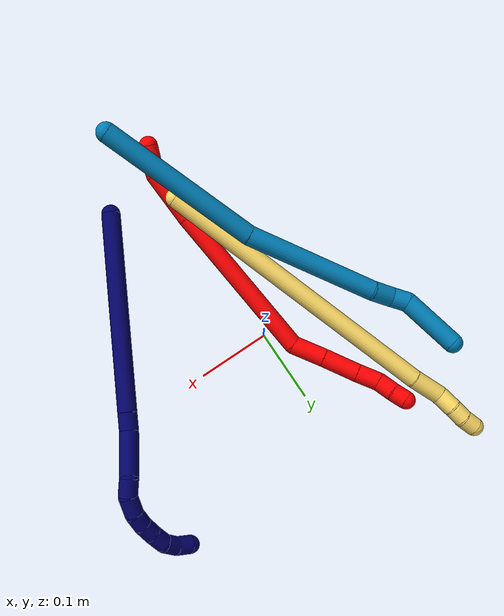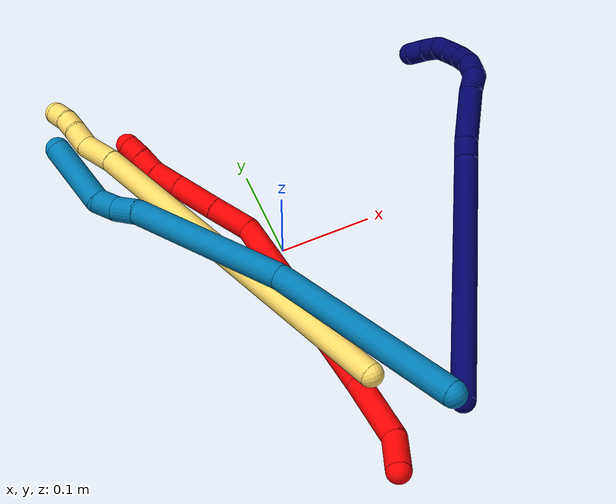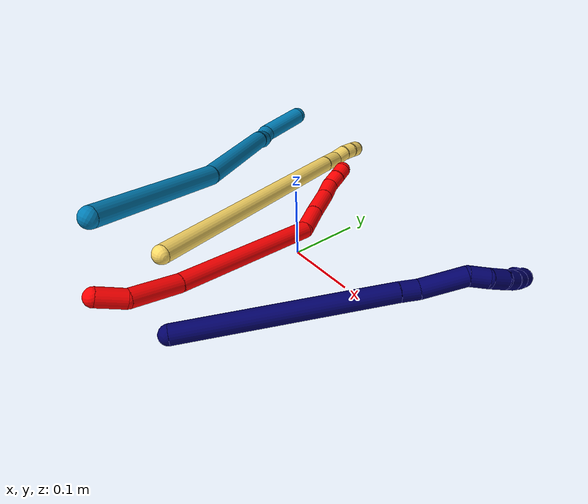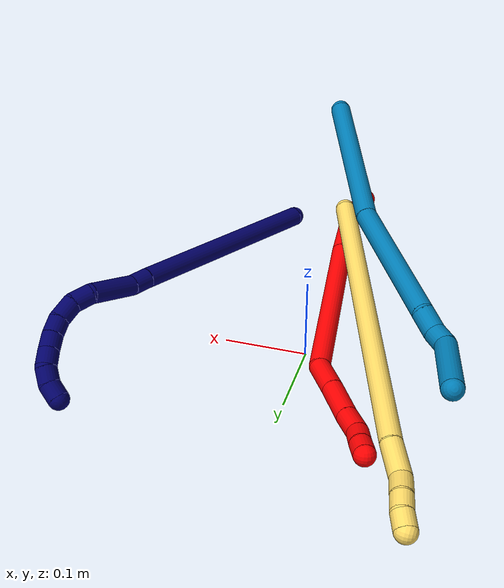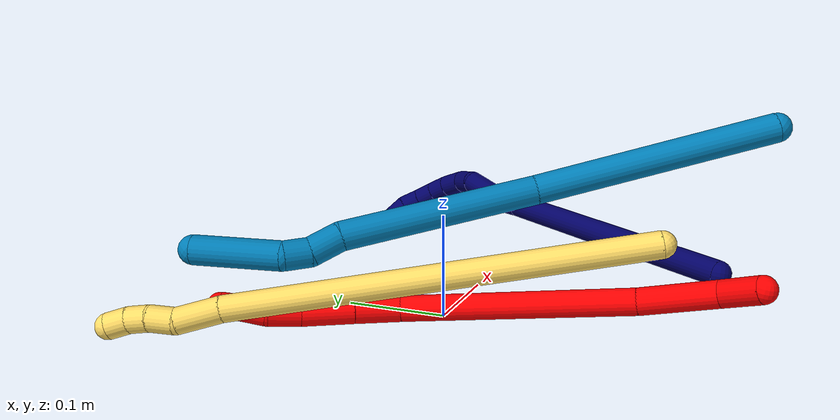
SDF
<sdf version="1.7">
 <world name="default">
  <model name="2">
   <static>0</static>
   <link name="2">
    <collision name="collision-cylinder-e_1_1_4">
     <pose>-0.012737 0.011349 0.009053 -0.897487 -0.720167 0.358677</pose>
     <geometry><cylinder><radius>0.0125</radius><length>0.038627</length></cylinder></geometry>
     <surface>
      <friction><ode><mu>1.16</mu><mu2>1.16</mu2><slip1>0</slip1><slip2>0</slip2></ode></friction>
      <contact><ode><kp>1e+06</kp><kd>1</kd><max_vel>0</max_vel><min_depth>0.001</min_depth></ode></contact>
     </surface>
    </collision>
    <visual name="visual-cylinder-e_1_1_4">
     <pose>-0.012737 0.011349 0.009053 -0.897487 -0.720167 0.358677</pose>
     <geometry><cylinder><radius>0.0125</radius><length>0.038627</length></cylinder></geometry>
     <material><ambient>1 0 0 1</ambient></material>
    </visual>
    <collision name="collision-cylinder-e_2_4_5">
     <pose>-0.037715 0.05317 0.031824 -1.14779 -0.351125 0.228357</pose>
     <geometry><cylinder><radius>0.0125</radius><length>0.071175</length></cylinder></geometry>
     <surface>
      <friction><ode><mu>1.16</mu><mu2>1.16</mu2><slip1>0</slip1><slip2>0</slip2></ode></friction>
      <contact><ode><kp>1e+06</kp><kd>1</kd><max_vel>0</max_vel><min_depth>0.001</min_depth></ode></contact>
     </surface>
    </collision>
    <visual name="visual-cylinder-e_2_4_5">
     <pose>-0.037715 0.05317 0.031824 -1.14779 -0.351125 0.228357</pose>
     <geometry><cylinder><radius>0.0125</radius><length>0.071175</length></cylinder></geometry>
     <material><ambient>1 0 0 1</ambient></material>
    </visual>
    <collision name="collision-cylinder-e_3_5_6">
     <pose>-0.083503 0.183421 0.079303 -1.24453 -0.308321 0.222022</pose>
     <geometry><cylinder><radius>0.0125</radius><length>0.221101</length></cylinder></geometry>
     <surface>
      <friction><ode><mu>1.16</mu><mu2>1.16</mu2><slip1>0</slip1><slip2>0</slip2></ode></friction>
      <contact><ode><kp>1e+06</kp><kd>1</kd><max_vel>0</max_vel><min_depth>0.001</min_depth></ode></contact>
     </surface>
    </collision>
    <visual name="visual-cylinder-e_3_5_6">
     <pose>-0.083503 0.183421 0.079303 -1.24453 -0.308321 0.222022</pose>
     <geometry><cylinder><radius>0.0125</radius><length>0.221101</length></cylinder></geometry>
     <material><ambient>1 0 0 1</ambient></material>
    </visual>
    <collision name="collision-cylinder-e_4_6_7">
     <pose>-0.113929 0.305263 0.116078 -1.43505 0.139301 -0.121615</pose>
     <geometry><cylinder><radius>0.0125</radius><length>0.044967</length></cylinder></geometry>
     <surface>
      <friction><ode><mu>1.16</mu><mu2>1.16</mu2><slip1>0</slip1><slip2>0</slip2></ode></friction>
      <contact><ode><kp>1e+06</kp><kd>1</kd><max_vel>0</max_vel><min_depth>0.001</min_depth></ode></contact>
     </surface>
    </collision>
    <visual name="visual-cylinder-e_4_6_7">
     <pose>-0.113929 0.305263 0.116078 -1.43505 0.139301 -0.121615</pose>
     <geometry><cylinder><radius>0.0125</radius><length>0.044967</length></cylinder></geometry>
     <material><ambient>1 0 0 1</ambient></material>
    </visual>
    <collision name="collision-cylinder-e_5_7_8">
     <pose>-0.107932 0.351562 0.1229 -1.41492 0.116663 -0.099792</pose>
     <geometry><cylinder><radius>0.0125</radius><length>0.049408</length></cylinder></geometry>
     <surface>
      <friction><ode><mu>1.16</mu><mu2>1.16</mu2><slip1>0</slip1><slip2>0</slip2></ode></friction>
      <contact><ode><kp>1e+06</kp><kd>1</kd><max_vel>0</max_vel><min_depth>0.001</min_depth></ode></contact>
     </surface>
    </collision>
    <visual name="visual-cylinder-e_5_7_8">
     <pose>-0.107932 0.351562 0.1229 -1.41492 0.116663 -0.099792</pose>
     <geometry><cylinder><radius>0.0125</radius><length>0.049408</length></cylinder></geometry>
     <material><ambient>1 0 0 1</ambient></material>
    </visual>
    <collision name="collision-cylinder-e_6_8_9">
     <pose>-0.102842 0.391097 0.127942 -1.49038 0.143307 -0.132256</pose>
     <geometry><cylinder><radius>0.0125</radius><length>0.03101</length></cylinder></geometry>
     <surface>
      <friction><ode><mu>1.16</mu><mu2>1.16</mu2><slip1>0</slip1><slip2>0</slip2></ode></friction>
      <contact><ode><kp>1e+06</kp><kd>1</kd><max_vel>0</max_vel><min_depth>0.001</min_depth></ode></contact>
     </surface>
    </collision>
    <visual name="visual-cylinder-e_6_8_9">
     <pose>-0.102842 0.391097 0.127942 -1.49038 0.143307 -0.132256</pose>
     <geometry><cylinder><radius>0.0125</radius><length>0.03101</length></cylinder></geometry>
     <material><ambient>1 0 0 1</ambient></material>
    </visual>
    <collision name="collision-cylinder-e_7_9_10">
     <pose>-0.101893 0.418 0.128937 -1.59125 -0.108552 0.110791</pose>
     <geometry><cylinder><radius>0.0125</radius><length>0.023355</length></cylinder></geometry>
     <surface>
      <friction><ode><mu>1.16</mu><mu2>1.16</mu2><slip1>0</slip1><slip2>0</slip2></ode></friction>
      <contact><ode><kp>1e+06</kp><kd>1</kd><max_vel>0</max_vel><min_depth>0.001</min_depth></ode></contact>
     </surface>
    </collision>
    <visual name="visual-cylinder-e_7_9_10">
     <pose>-0.101893 0.418 0.128937 -1.59125 -0.108552 0.110791</pose>
     <geometry><cylinder><radius>0.0125</radius><length>0.023355</length></cylinder></geometry>
     <material><ambient>1 0 0 1</ambient></material>
    </visual>
    <collision name="collision-cylinder-e_8_10_2">
     <pose>-0.103542 0.43977 0.12908 -1.53338 -0.037702 0.036317</pose>
     <geometry><cylinder><radius>0.0125</radius><length>0.020357</length></cylinder></geometry>
     <surface>
      <friction><ode><mu>1.16</mu><mu2>1.16</mu2><slip1>0</slip1><slip2>0</slip2></ode></friction>
      <contact><ode><kp>1e+06</kp><kd>1</kd><max_vel>0</max_vel><min_depth>0.001</min_depth></ode></contact>
     </surface>
    </collision>
    <visual name="visual-cylinder-e_8_10_2">
     <pose>-0.103542 0.43977 0.12908 -1.53338 -0.037702 0.036317</pose>
     <geometry><cylinder><radius>0.0125</radius><length>0.020357</length></cylinder></geometry>
     <material><ambient>1 0 0 1</ambient></material>
    </visual>
    <collision name="collision-sphere-2">
     <pose>-0.103925 0.449934 0.129461 0 -0 0</pose>
     <geometry><sphere><radius>0.0125</radius></sphere></geometry>
     <surface>
      <friction><ode><mu>1.16</mu><mu2>1.16</mu2><slip1>0</slip1><slip2>0</slip2></ode></friction>
      <contact><ode><kp>1e+06</kp><kd>1</kd><max_vel>0</max_vel><min_depth>0.001</min_depth></ode></contact>
     </surface>
    </collision>
    <visual name="visual-sphere-2">
     <pose>-0.103925 0.449934 0.129461 0 -0 0</pose>
     <geometry><sphere><radius>0.0125</radius></sphere></geometry>
     <material><ambient>1 0 0 1</ambient></material>
    </visual>
    <collision name="collision-sphere-10">
     <pose>-0.103158 0.429606 0.1287 0 -0 0</pose>
     <geometry><sphere><radius>0.0125</radius></sphere></geometry>
     <surface>
      <friction><ode><mu>1.16</mu><mu2>1.16</mu2><slip1>0</slip1><slip2>0</slip2></ode></friction>
      <contact><ode><kp>1e+06</kp><kd>1</kd><max_vel>0</max_vel><min_depth>0.001</min_depth></ode></contact>
     </surface>
    </collision>
    <visual name="visual-sphere-10">
     <pose>-0.103158 0.429606 0.1287 0 -0 0</pose>
     <geometry><sphere><radius>0.0125</radius></sphere></geometry>
     <material><ambient>1 0 0 1</ambient></material>
    </visual>
    <collision name="collision-sphere-9">
     <pose>-0.100628 0.406393 0.129174 0 -0 0</pose>
     <geometry><sphere><radius>0.0125</radius></sphere></geometry>
     <surface>
      <friction><ode><mu>1.16</mu><mu2>1.16</mu2><slip1>0</slip1><slip2>0</slip2></ode></friction>
      <contact><ode><kp>1e+06</kp><kd>1</kd><max_vel>0</max_vel><min_depth>0.001</min_depth></ode></contact>
     </surface>
    </collision>
    <visual name="visual-sphere-9">
     <pose>-0.100628 0.406393 0.129174 0 -0 0</pose>
     <geometry><sphere><radius>0.0125</radius></sphere></geometry>
     <material><ambient>1 0 0 1</ambient></material>
    </visual>
    <collision name="collision-sphere-4">
     <pose>-0.025475 0.022699 0.018106 0 -0 0</pose>
     <geometry><sphere><radius>0.0125</radius></sphere></geometry>
     <surface>
      <friction><ode><mu>1.16</mu><mu2>1.16</mu2><slip1>0</slip1><slip2>0</slip2></ode></friction>
      <contact><ode><kp>1e+06</kp><kd>1</kd><max_vel>0</max_vel><min_depth>0.001</min_depth></ode></contact>
     </surface>
    </collision>
    <visual name="visual-sphere-4">
     <pose>-0.025475 0.022699 0.018106 0 -0 0</pose>
     <geometry><sphere><radius>0.0125</radius></sphere></geometry>
     <material><ambient>1 0 0 1</ambient></material>
    </visual>
    <collision name="collision-sphere-1">
     <geometry><sphere><radius>0.0125</radius></sphere></geometry>
     <surface>
      <friction><ode><mu>1.16</mu><mu2>1.16</mu2><slip1>0</slip1><slip2>0</slip2></ode></friction>
      <contact><ode><kp>1e+06</kp><kd>1</kd><max_vel>0</max_vel><min_depth>0.001</min_depth></ode></contact>
     </surface>
    </collision>
    <visual name="visual-sphere-1">
     <geometry><sphere><radius>0.0125</radius></sphere></geometry>
     <material><ambient>1 0 0 1</ambient></material>
    </visual>
    <collision name="collision-sphere-8">
     <pose>-0.105056 0.375801 0.126709 0 -0 0</pose>
     <geometry><sphere><radius>0.0125</radius></sphere></geometry>
     <surface>
      <friction><ode><mu>1.16</mu><mu2>1.16</mu2><slip1>0</slip1><slip2>0</slip2></ode></friction>
      <contact><ode><kp>1e+06</kp><kd>1</kd><max_vel>0</max_vel><min_depth>0.001</min_depth></ode></contact>
     </surface>
    </collision>
    <visual name="visual-sphere-8">
     <pose>-0.105056 0.375801 0.126709 0 -0 0</pose>
     <geometry><sphere><radius>0.0125</radius></sphere></geometry>
     <material><ambient>1 0 0 1</ambient></material>
    </visual>
    <collision name="collision-sphere-5">
     <pose>-0.049956 0.083641 0.045541 0 -0 0</pose>
     <geometry><sphere><radius>0.0125</radius></sphere></geometry>
     <surface>
      <friction><ode><mu>1.16</mu><mu2>1.16</mu2><slip1>0</slip1><slip2>0</slip2></ode></friction>
      <contact><ode><kp>1e+06</kp><kd>1</kd><max_vel>0</max_vel><min_depth>0.001</min_depth></ode></contact>
     </surface>
    </collision>
    <visual name="visual-sphere-5">
     <pose>-0.049956 0.083641 0.045541 0 -0 0</pose>
     <geometry><sphere><radius>0.0125</radius></sphere></geometry>
     <material><ambient>1 0 0 1</ambient></material>
    </visual>
    <collision name="collision-sphere-6">
     <pose>-0.117051 0.283202 0.113064 0 -0 0</pose>
     <geometry><sphere><radius>0.0125</radius></sphere></geometry>
     <surface>
      <friction><ode><mu>1.16</mu><mu2>1.16</mu2><slip1>0</slip1><slip2>0</slip2></ode></friction>
      <contact><ode><kp>1e+06</kp><kd>1</kd><max_vel>0</max_vel><min_depth>0.001</min_depth></ode></contact>
     </surface>
    </collision>
    <visual name="visual-sphere-6">
     <pose>-0.117051 0.283202 0.113064 0 -0 0</pose>
     <geometry><sphere><radius>0.0125</radius></sphere></geometry>
     <material><ambient>1 0 0 1</ambient></material>
    </visual>
    <collision name="collision-sphere-7">
     <pose>-0.110807 0.327324 0.119091 0 -0 0</pose>
     <geometry><sphere><radius>0.0125</radius></sphere></geometry>
     <surface>
      <friction><ode><mu>1.16</mu><mu2>1.16</mu2><slip1>0</slip1><slip2>0</slip2></ode></friction>
      <contact><ode><kp>1e+06</kp><kd>1</kd><max_vel>0</max_vel><min_depth>0.001</min_depth></ode></contact>
     </surface>
    </collision>
    <visual name="visual-sphere-7">
     <pose>-0.110807 0.327324 0.119091 0 -0 0</pose>
     <geometry><sphere><radius>0.0125</radius></sphere></geometry>
     <material><ambient>1 0 0 1</ambient></material>
    </visual>
    <inertial>
     <pose>-0.079543 0.213434 0.082094 0 -0 0</pose>
     <mass>0.5</mass>
     <inertia>
      <ixx>0.001097</ixx>
      <ixy>0</ixy>
      <ixz>0</ixz>
      <iyy>0.000598</iyy>
      <iyz>0</iyz>
      <izz>-0.000582</izz>
     </inertia>
    </inertial>
   </link>
   <pose>-0.010267 -0.288507 0.066457 2.96966 0.067006 -2.70989</pose>
  </model>
  <model name="5">
   <static>0</static>
   <link name="5">
    <collision name="collision-cylinder-e_1_1_4">
     <pose>-0.085904 0.158323 0.07733 -1.11645 -0.453631 0.286271</pose>
     <geometry><cylinder><radius>0.0125</radius><length>0.392049</length></cylinder></geometry>
     <surface>
      <friction><ode><mu>1.16</mu><mu2>1.16</mu2><slip1>0</slip1><slip2>0</slip2></ode></friction>
      <contact><ode><kp>1e+06</kp><kd>1</kd><max_vel>0</max_vel><min_depth>0.001</min_depth></ode></contact>
     </surface>
    </collision>
    <visual name="visual-cylinder-e_1_1_4">
     <pose>-0.085904 0.158323 0.07733 -1.11645 -0.453631 0.286271</pose>
     <geometry><cylinder><radius>0.0125</radius><length>0.392049</length></cylinder></geometry>
     <material><ambient>1 0.858824 0.4 1</ambient></material>
    </visual>
    <collision name="collision-cylinder-e_2_4_5">
     <pose>-0.18237 0.332119 0.164718 -0.994383 -0.519766 0.286605</pose>
     <geometry><cylinder><radius>0.0125</radius><length>0.042527</length></cylinder></geometry>
     <surface>
      <friction><ode><mu>1.16</mu><mu2>1.16</mu2><slip1>0</slip1><slip2>0</slip2></ode></friction>
      <contact><ode><kp>1e+06</kp><kd>1</kd><max_vel>0</max_vel><min_depth>0.001</min_depth></ode></contact>
     </surface>
    </collision>
    <visual name="visual-cylinder-e_2_4_5">
     <pose>-0.18237 0.332119 0.164718 -0.994383 -0.519766 0.286605</pose>
     <geometry><cylinder><radius>0.0125</radius><length>0.042527</length></cylinder></geometry>
     <material><ambient>1 0.858824 0.4 1</ambient></material>
    </visual>
    <collision name="collision-cylinder-e_3_5_6">
     <pose>-0.196476 0.359277 0.177845 -1.31398 -0.285475 0.220792</pose>
     <geometry><cylinder><radius>0.0125</radius><length>0.02518</length></cylinder></geometry>
     <surface>
      <friction><ode><mu>1.16</mu><mu2>1.16</mu2><slip1>0</slip1><slip2>0</slip2></ode></friction>
      <contact><ode><kp>1e+06</kp><kd>1</kd><max_vel>0</max_vel><min_depth>0.001</min_depth></ode></contact>
     </surface>
    </collision>
    <visual name="visual-cylinder-e_3_5_6">
     <pose>-0.196476 0.359277 0.177845 -1.31398 -0.285475 0.220792</pose>
     <geometry><cylinder><radius>0.0125</radius><length>0.02518</length></cylinder></geometry>
     <material><ambient>1 0.858824 0.4 1</ambient></material>
    </visual>
    <collision name="collision-cylinder-e_4_6_7">
     <pose>-0.204546 0.379592 0.183511 -1.2785 -0.465217 0.348633</pose>
     <geometry><cylinder><radius>0.0125</radius><length>0.020169</length></cylinder></geometry>
     <surface>
      <friction><ode><mu>1.16</mu><mu2>1.16</mu2><slip1>0</slip1><slip2>0</slip2></ode></friction>
      <contact><ode><kp>1e+06</kp><kd>1</kd><max_vel>0</max_vel><min_depth>0.001</min_depth></ode></contact>
     </surface>
    </collision>
    <visual name="visual-cylinder-e_4_6_7">
     <pose>-0.204546 0.379592 0.183511 -1.2785 -0.465217 0.348633</pose>
     <geometry><cylinder><radius>0.0125</radius><length>0.020169</length></cylinder></geometry>
     <material><ambient>1 0.858824 0.4 1</ambient></material>
    </visual>
    <collision name="collision-cylinder-e_5_7_2">
     <pose>-0.214544 0.395515 0.190304 -1.04869 -0.576773 0.339833</pose>
     <geometry><cylinder><radius>0.0125</radius><length>0.020075</length></cylinder></geometry>
     <surface>
      <friction><ode><mu>1.16</mu><mu2>1.16</mu2><slip1>0</slip1><slip2>0</slip2></ode></friction>
      <contact><ode><kp>1e+06</kp><kd>1</kd><max_vel>0</max_vel><min_depth>0.001</min_depth></ode></contact>
     </surface>
    </collision>
    <visual name="visual-cylinder-e_5_7_2">
     <pose>-0.214544 0.395515 0.190304 -1.04869 -0.576773 0.339833</pose>
     <geometry><cylinder><radius>0.0125</radius><length>0.020075</length></cylinder></geometry>
     <material><ambient>1 0.858824 0.4 1</ambient></material>
    </visual>
    <collision name="collision-sphere-2">
     <pose>-0.220017 0.402808 0.1945 0 -0 0</pose>
     <geometry><sphere><radius>0.0125</radius></sphere></geometry>
     <surface>
      <friction><ode><mu>1.16</mu><mu2>1.16</mu2><slip1>0</slip1><slip2>0</slip2></ode></friction>
      <contact><ode><kp>1e+06</kp><kd>1</kd><max_vel>0</max_vel><min_depth>0.001</min_depth></ode></contact>
     </surface>
    </collision>
    <visual name="visual-sphere-2">
     <pose>-0.220017 0.402808 0.1945 0 -0 0</pose>
     <geometry><sphere><radius>0.0125</radius></sphere></geometry>
     <material><ambient>1 0.858824 0.4 1</ambient></material>
    </visual>
    <collision name="collision-sphere-7">
     <pose>-0.20907 0.388222 0.186108 0 -0 0</pose>
     <geometry><sphere><radius>0.0125</radius></sphere></geometry>
     <surface>
      <friction><ode><mu>1.16</mu><mu2>1.16</mu2><slip1>0</slip1><slip2>0</slip2></ode></friction>
      <contact><ode><kp>1e+06</kp><kd>1</kd><max_vel>0</max_vel><min_depth>0.001</min_depth></ode></contact>
     </surface>
    </collision>
    <visual name="visual-sphere-7">
     <pose>-0.20907 0.388222 0.186108 0 -0 0</pose>
     <geometry><sphere><radius>0.0125</radius></sphere></geometry>
     <material><ambient>1 0.858824 0.4 1</ambient></material>
    </visual>
    <collision name="collision-sphere-6">
     <pose>-0.200022 0.370961 0.180914 0 -0 0</pose>
     <geometry><sphere><radius>0.0125</radius></sphere></geometry>
     <surface>
      <friction><ode><mu>1.16</mu><mu2>1.16</mu2><slip1>0</slip1><slip2>0</slip2></ode></friction>
      <contact><ode><kp>1e+06</kp><kd>1</kd><max_vel>0</max_vel><min_depth>0.001</min_depth></ode></contact>
     </surface>
    </collision>
    <visual name="visual-sphere-6">
     <pose>-0.200022 0.370961 0.180914 0 -0 0</pose>
     <geometry><sphere><radius>0.0125</radius></sphere></geometry>
     <material><ambient>1 0.858824 0.4 1</ambient></material>
    </visual>
    <collision name="collision-sphere-5">
     <pose>-0.192931 0.347592 0.174777 0 -0 0</pose>
     <geometry><sphere><radius>0.0125</radius></sphere></geometry>
     <surface>
      <friction><ode><mu>1.16</mu><mu2>1.16</mu2><slip1>0</slip1><slip2>0</slip2></ode></friction>
      <contact><ode><kp>1e+06</kp><kd>1</kd><max_vel>0</max_vel><min_depth>0.001</min_depth></ode></contact>
     </surface>
    </collision>
    <visual name="visual-sphere-5">
     <pose>-0.192931 0.347592 0.174777 0 -0 0</pose>
     <geometry><sphere><radius>0.0125</radius></sphere></geometry>
     <material><ambient>1 0.858824 0.4 1</ambient></material>
    </visual>
    <collision name="collision-sphere-1">
     <geometry><sphere><radius>0.0125</radius></sphere></geometry>
     <surface>
      <friction><ode><mu>1.16</mu><mu2>1.16</mu2><slip1>0</slip1><slip2>0</slip2></ode></friction>
      <contact><ode><kp>1e+06</kp><kd>1</kd><max_vel>0</max_vel><min_depth>0.001</min_depth></ode></contact>
     </surface>
    </collision>
    <visual name="visual-sphere-1">
     <geometry><sphere><radius>0.0125</radius></sphere></geometry>
     <material><ambient>1 0.858824 0.4 1</ambient></material>
    </visual>
    <collision name="collision-sphere-4">
     <pose>-0.171809 0.316646 0.15466 0 -0 0</pose>
     <geometry><sphere><radius>0.0125</radius></sphere></geometry>
     <surface>
      <friction><ode><mu>1.16</mu><mu2>1.16</mu2><slip1>0</slip1><slip2>0</slip2></ode></friction>
      <contact><ode><kp>1e+06</kp><kd>1</kd><max_vel>0</max_vel><min_depth>0.001</min_depth></ode></contact>
     </surface>
    </collision>
    <visual name="visual-sphere-4">
     <pose>-0.171809 0.316646 0.15466 0 -0 0</pose>
     <geometry><sphere><radius>0.0125</radius></sphere></geometry>
     <material><ambient>1 0.858824 0.4 1</ambient></material>
    </visual>
    <inertial>
     <pose>-0.109628 0.201674 0.098644 0 -0 0</pose>
     <mass>0.5</mass>
     <inertia>
      <ixx>0.005619</ixx>
      <ixy>0</ixy>
      <ixz>0</ixz>
      <iyy>0.004001</iyy>
      <iyz>0</iyz>
      <izz>-0.00185</izz>
     </inertia>
    </inertial>
   </link>
   <pose>0.000821 -0.202846 0.093177 1.82625 -1.20009 -1.85761</pose>
  </model>
  <model name="7">
   <static>0</static>
   <link name="7">
    <collision name="collision-cylinder-e_1_1_4">
     <pose>-0.004125 0.087985 0.098877 -0.727176 -0.031154 0.011855</pose>
     <geometry><cylinder><radius>0.0125</radius><length>0.26484</length></cylinder></geometry>
     <surface>
      <friction><ode><mu>1.16</mu><mu2>1.16</mu2><slip1>0</slip1><slip2>0</slip2></ode></friction>
      <contact><ode><kp>1e+06</kp><kd>1</kd><max_vel>0</max_vel><min_depth>0.001</min_depth></ode></contact>
     </surface>
    </collision>
    <visual name="visual-cylinder-e_1_1_4">
     <pose>-0.004125 0.087985 0.098877 -0.727176 -0.031154 0.011855</pose>
     <geometry><cylinder><radius>0.0125</radius><length>0.26484</length></cylinder></geometry>
     <material><ambient>0.003922 0 0.403922 1</ambient></material>
    </visual>
    <collision name="collision-cylinder-e_2_4_5">
     <pose>-0.009242 0.183908 0.206579 -0.73252 -0.083461 0.032029</pose>
     <geometry><cylinder><radius>0.0125</radius><length>0.023824</length></cylinder></geometry>
     <surface>
      <friction><ode><mu>1.16</mu><mu2>1.16</mu2><slip1>0</slip1><slip2>0</slip2></ode></friction>
      <contact><ode><kp>1e+06</kp><kd>1</kd><max_vel>0</max_vel><min_depth>0.001</min_depth></ode></contact>
     </surface>
    </collision>
    <visual name="visual-cylinder-e_2_4_5">
     <pose>-0.009242 0.183908 0.206579 -0.73252 -0.083461 0.032029</pose>
     <geometry><cylinder><radius>0.0125</radius><length>0.023824</length></cylinder></geometry>
     <material><ambient>0.003922 0 0.403922 1</ambient></material>
    </visual>
    <collision name="collision-cylinder-e_3_5_6">
     <pose>-0.006298 0.212104 0.236463 -0.766008 0.133961 -0.054041</pose>
     <geometry><cylinder><radius>0.0125</radius><length>0.058969</length></cylinder></geometry>
     <surface>
      <friction><ode><mu>1.16</mu><mu2>1.16</mu2><slip1>0</slip1><slip2>0</slip2></ode></friction>
      <contact><ode><kp>1e+06</kp><kd>1</kd><max_vel>0</max_vel><min_depth>0.001</min_depth></ode></contact>
     </surface>
    </collision>
    <visual name="visual-cylinder-e_3_5_6">
     <pose>-0.006298 0.212104 0.236463 -0.766008 0.133961 -0.054041</pose>
     <geometry><cylinder><radius>0.0125</radius><length>0.058969</length></cylinder></geometry>
     <material><ambient>0.003922 0 0.403922 1</ambient></material>
    </visual>
    <collision name="collision-cylinder-e_4_6_7">
     <pose>-0.005221 0.242062 0.264673 -0.935553 -0.233085 0.118147</pose>
     <geometry><cylinder><radius>0.0125</radius><length>0.024773</length></cylinder></geometry>
     <surface>
      <friction><ode><mu>1.16</mu><mu2>1.16</mu2><slip1>0</slip1><slip2>0</slip2></ode></friction>
      <contact><ode><kp>1e+06</kp><kd>1</kd><max_vel>0</max_vel><min_depth>0.001</min_depth></ode></contact>
     </surface>
    </collision>
    <visual name="visual-cylinder-e_4_6_7">
     <pose>-0.005221 0.242062 0.264673 -0.935553 -0.233085 0.118147</pose>
     <geometry><cylinder><radius>0.0125</radius><length>0.024773</length></cylinder></geometry>
     <material><ambient>0.003922 0 0.403922 1</ambient></material>
    </visual>
    <collision name="collision-cylinder-e_5_7_8">
     <pose>-0.013981 0.257909 0.281544 -0.563896 -0.473973 0.139695</pose>
     <geometry><cylinder><radius>0.0125</radius><length>0.025852</length></cylinder></geometry>
     <surface>
      <friction><ode><mu>1.16</mu><mu2>1.16</mu2><slip1>0</slip1><slip2>0</slip2></ode></friction>
      <contact><ode><kp>1e+06</kp><kd>1</kd><max_vel>0</max_vel><min_depth>0.001</min_depth></ode></contact>
     </surface>
    </collision>
    <visual name="visual-cylinder-e_5_7_8">
     <pose>-0.013981 0.257909 0.281544 -0.563896 -0.473973 0.139695</pose>
     <geometry><cylinder><radius>0.0125</radius><length>0.025852</length></cylinder></geometry>
     <material><ambient>0.003922 0 0.403922 1</ambient></material>
    </visual>
    <collision name="collision-cylinder-e_6_8_9">
     <pose>-0.025738 0.266442 0.299149 -0.293777 -0.618086 0.094405</pose>
     <geometry><cylinder><radius>0.0125</radius><length>0.020214</length></cylinder></geometry>
     <surface>
      <friction><ode><mu>1.16</mu><mu2>1.16</mu2><slip1>0</slip1><slip2>0</slip2></ode></friction>
      <contact><ode><kp>1e+06</kp><kd>1</kd><max_vel>0</max_vel><min_depth>0.001</min_depth></ode></contact>
     </surface>
    </collision>
    <visual name="visual-cylinder-e_6_8_9">
     <pose>-0.025738 0.266442 0.299149 -0.293777 -0.618086 0.094405</pose>
     <geometry><cylinder><radius>0.0125</radius><length>0.020214</length></cylinder></geometry>
     <material><ambient>0.003922 0 0.403922 1</ambient></material>
    </visual>
    <collision name="collision-cylinder-e_7_9_10">
     <pose>-0.037484 0.269676 0.315123 -0.104583 -0.626616 0.03391</pose>
     <geometry><cylinder><radius>0.0125</radius><length>0.020085</length></cylinder></geometry>
     <surface>
      <friction><ode><mu>1.16</mu><mu2>1.16</mu2><slip1>0</slip1><slip2>0</slip2></ode></friction>
      <contact><ode><kp>1e+06</kp><kd>1</kd><max_vel>0</max_vel><min_depth>0.001</min_depth></ode></contact>
     </surface>
    </collision>
    <visual name="visual-cylinder-e_7_9_10">
     <pose>-0.037484 0.269676 0.315123 -0.104583 -0.626616 0.03391</pose>
     <geometry><cylinder><radius>0.0125</radius><length>0.020085</length></cylinder></geometry>
     <material><ambient>0.003922 0 0.403922 1</ambient></material>
    </visual>
    <collision name="collision-cylinder-e_8_10_11">
     <pose>-0.049202 0.270595 0.33191 -0.007985 -0.590513 0.002429</pose>
     <geometry><cylinder><radius>0.0125</radius><length>0.020939</length></cylinder></geometry>
     <surface>
      <friction><ode><mu>1.16</mu><mu2>1.16</mu2><slip1>0</slip1><slip2>0</slip2></ode></friction>
      <contact><ode><kp>1e+06</kp><kd>1</kd><max_vel>0</max_vel><min_depth>0.001</min_depth></ode></contact>
     </surface>
    </collision>
    <visual name="visual-cylinder-e_8_10_11">
     <pose>-0.049202 0.270595 0.33191 -0.007985 -0.590513 0.002429</pose>
     <geometry><cylinder><radius>0.0125</radius><length>0.020939</length></cylinder></geometry>
     <material><ambient>0.003922 0 0.403922 1</ambient></material>
    </visual>
    <collision name="collision-cylinder-e_9_11_12">
     <pose>-0.062471 0.26778 0.34687 0.43152 -0.82329 -0.190795</pose>
     <geometry><cylinder><radius>0.0125</radius><length>0.020289</length></cylinder></geometry>
     <surface>
      <friction><ode><mu>1.16</mu><mu2>1.16</mu2><slip1>0</slip1><slip2>0</slip2></ode></friction>
      <contact><ode><kp>1e+06</kp><kd>1</kd><max_vel>0</max_vel><min_depth>0.001</min_depth></ode></contact>
     </surface>
    </collision>
    <visual name="visual-cylinder-e_9_11_12">
     <pose>-0.062471 0.26778 0.34687 0.43152 -0.82329 -0.190795</pose>
     <geometry><cylinder><radius>0.0125</radius><length>0.020289</length></cylinder></geometry>
     <material><ambient>0.003922 0 0.403922 1</ambient></material>
    </visual>
    <collision name="collision-cylinder-e_10_12_2">
     <pose>-0.075906 0.25888 0.358616 0.831738 -0.63496 -0.288221</pose>
     <geometry><cylinder><radius>0.0125</radius><length>0.020216</length></cylinder></geometry>
     <surface>
      <friction><ode><mu>1.16</mu><mu2>1.16</mu2><slip1>0</slip1><slip2>0</slip2></ode></friction>
      <contact><ode><kp>1e+06</kp><kd>1</kd><max_vel>0</max_vel><min_depth>0.001</min_depth></ode></contact>
     </surface>
    </collision>
    <visual name="visual-cylinder-e_10_12_2">
     <pose>-0.075906 0.25888 0.358616 0.831738 -0.63496 -0.288221</pose>
     <geometry><cylinder><radius>0.0125</radius><length>0.020216</length></cylinder></geometry>
     <material><ambient>0.003922 0 0.403922 1</ambient></material>
    </visual>
    <collision name="collision-sphere-2">
     <pose>-0.081902 0.252866 0.364098 0 -0 0</pose>
     <geometry><sphere><radius>0.0125</radius></sphere></geometry>
     <surface>
      <friction><ode><mu>1.16</mu><mu2>1.16</mu2><slip1>0</slip1><slip2>0</slip2></ode></friction>
      <contact><ode><kp>1e+06</kp><kd>1</kd><max_vel>0</max_vel><min_depth>0.001</min_depth></ode></contact>
     </surface>
    </collision>
    <visual name="visual-sphere-2">
     <pose>-0.081902 0.252866 0.364098 0 -0 0</pose>
     <geometry><sphere><radius>0.0125</radius></sphere></geometry>
     <material><ambient>0.003922 0 0.403922 1</ambient></material>
    </visual>
    <collision name="collision-sphere-12">
     <pose>-0.069911 0.264895 0.353134 0 -0 0</pose>
     <geometry><sphere><radius>0.0125</radius></sphere></geometry>
     <surface>
      <friction><ode><mu>1.16</mu><mu2>1.16</mu2><slip1>0</slip1><slip2>0</slip2></ode></friction>
      <contact><ode><kp>1e+06</kp><kd>1</kd><max_vel>0</max_vel><min_depth>0.001</min_depth></ode></contact>
     </surface>
    </collision>
    <visual name="visual-sphere-12">
     <pose>-0.069911 0.264895 0.353134 0 -0 0</pose>
     <geometry><sphere><radius>0.0125</radius></sphere></geometry>
     <material><ambient>0.003922 0 0.403922 1</ambient></material>
    </visual>
    <collision name="collision-sphere-11">
     <pose>-0.055031 0.270664 0.340606 0 -0 0</pose>
     <geometry><sphere><radius>0.0125</radius></sphere></geometry>
     <surface>
      <friction><ode><mu>1.16</mu><mu2>1.16</mu2><slip1>0</slip1><slip2>0</slip2></ode></friction>
      <contact><ode><kp>1e+06</kp><kd>1</kd><max_vel>0</max_vel><min_depth>0.001</min_depth></ode></contact>
     </surface>
    </collision>
    <visual name="visual-sphere-11">
     <pose>-0.055031 0.270664 0.340606 0 -0 0</pose>
     <geometry><sphere><radius>0.0125</radius></sphere></geometry>
     <material><ambient>0.003922 0 0.403922 1</ambient></material>
    </visual>
    <collision name="collision-sphere-10">
     <pose>-0.043373 0.270525 0.323213 0 -0 0</pose>
     <geometry><sphere><radius>0.0125</radius></sphere></geometry>
     <surface>
      <friction><ode><mu>1.16</mu><mu2>1.16</mu2><slip1>0</slip1><slip2>0</slip2></ode></friction>
      <contact><ode><kp>1e+06</kp><kd>1</kd><max_vel>0</max_vel><min_depth>0.001</min_depth></ode></contact>
     </surface>
    </collision>
    <visual name="visual-sphere-10">
     <pose>-0.043373 0.270525 0.323213 0 -0 0</pose>
     <geometry><sphere><radius>0.0125</radius></sphere></geometry>
     <material><ambient>0.003922 0 0.403922 1</ambient></material>
    </visual>
    <collision name="collision-sphere-9">
     <pose>-0.031594 0.268827 0.307033 0 -0 0</pose>
     <geometry><sphere><radius>0.0125</radius></sphere></geometry>
     <surface>
      <friction><ode><mu>1.16</mu><mu2>1.16</mu2><slip1>0</slip1><slip2>0</slip2></ode></friction>
      <contact><ode><kp>1e+06</kp><kd>1</kd><max_vel>0</max_vel><min_depth>0.001</min_depth></ode></contact>
     </surface>
    </collision>
    <visual name="visual-sphere-9">
     <pose>-0.031594 0.268827 0.307033 0 -0 0</pose>
     <geometry><sphere><radius>0.0125</radius></sphere></geometry>
     <material><ambient>0.003922 0 0.403922 1</ambient></material>
    </visual>
    <collision name="collision-sphere-4">
     <pose>-0.008249 0.17597 0.197754 0 -0 0</pose>
     <geometry><sphere><radius>0.0125</radius></sphere></geometry>
     <surface>
      <friction><ode><mu>1.16</mu><mu2>1.16</mu2><slip1>0</slip1><slip2>0</slip2></ode></friction>
      <contact><ode><kp>1e+06</kp><kd>1</kd><max_vel>0</max_vel><min_depth>0.001</min_depth></ode></contact>
     </surface>
    </collision>
    <visual name="visual-sphere-4">
     <pose>-0.008249 0.17597 0.197754 0 -0 0</pose>
     <geometry><sphere><radius>0.0125</radius></sphere></geometry>
     <material><ambient>0.003922 0 0.403922 1</ambient></material>
    </visual>
    <collision name="collision-sphere-1">
     <geometry><sphere><radius>0.0125</radius></sphere></geometry>
     <surface>
      <friction><ode><mu>1.16</mu><mu2>1.16</mu2><slip1>0</slip1><slip2>0</slip2></ode></friction>
      <contact><ode><kp>1e+06</kp><kd>1</kd><max_vel>0</max_vel><min_depth>0.001</min_depth></ode></contact>
     </surface>
    </collision>
    <visual name="visual-sphere-1">
     <geometry><sphere><radius>0.0125</radius></sphere></geometry>
     <material><ambient>0.003922 0 0.403922 1</ambient></material>
    </visual>
    <collision name="collision-sphere-8">
     <pose>-0.019881 0.264056 0.291264 0 -0 0</pose>
     <geometry><sphere><radius>0.0125</radius></sphere></geometry>
     <surface>
      <friction><ode><mu>1.16</mu><mu2>1.16</mu2><slip1>0</slip1><slip2>0</slip2></ode></friction>
      <contact><ode><kp>1e+06</kp><kd>1</kd><max_vel>0</max_vel><min_depth>0.001</min_depth></ode></contact>
     </surface>
    </collision>
    <visual name="visual-sphere-8">
     <pose>-0.019881 0.264056 0.291264 0 -0 0</pose>
     <geometry><sphere><radius>0.0125</radius></sphere></geometry>
     <material><ambient>0.003922 0 0.403922 1</ambient></material>
    </visual>
    <collision name="collision-sphere-5">
     <pose>-0.010235 0.191847 0.215405 0 -0 0</pose>
     <geometry><sphere><radius>0.0125</radius></sphere></geometry>
     <surface>
      <friction><ode><mu>1.16</mu><mu2>1.16</mu2><slip1>0</slip1><slip2>0</slip2></ode></friction>
      <contact><ode><kp>1e+06</kp><kd>1</kd><max_vel>0</max_vel><min_depth>0.001</min_depth></ode></contact>
     </surface>
    </collision>
    <visual name="visual-sphere-5">
     <pose>-0.010235 0.191847 0.215405 0 -0 0</pose>
     <geometry><sphere><radius>0.0125</radius></sphere></geometry>
     <material><ambient>0.003922 0 0.403922 1</ambient></material>
    </visual>
    <collision name="collision-sphere-6">
     <pose>-0.00236 0.232361 0.257522 0 -0 0</pose>
     <geometry><sphere><radius>0.0125</radius></sphere></geometry>
     <surface>
      <friction><ode><mu>1.16</mu><mu2>1.16</mu2><slip1>0</slip1><slip2>0</slip2></ode></friction>
      <contact><ode><kp>1e+06</kp><kd>1</kd><max_vel>0</max_vel><min_depth>0.001</min_depth></ode></contact>
     </surface>
    </collision>
    <visual name="visual-sphere-6">
     <pose>-0.00236 0.232361 0.257522 0 -0 0</pose>
     <geometry><sphere><radius>0.0125</radius></sphere></geometry>
     <material><ambient>0.003922 0 0.403922 1</ambient></material>
    </visual>
    <collision name="collision-sphere-7">
     <pose>-0.008082 0.251762 0.271824 0 -0 0</pose>
     <geometry><sphere><radius>0.0125</radius></sphere></geometry>
     <surface>
      <friction><ode><mu>1.16</mu><mu2>1.16</mu2><slip1>0</slip1><slip2>0</slip2></ode></friction>
      <contact><ode><kp>1e+06</kp><kd>1</kd><max_vel>0</max_vel><min_depth>0.001</min_depth></ode></contact>
     </surface>
    </collision>
    <visual name="visual-sphere-7">
     <pose>-0.008082 0.251762 0.271824 0 -0 0</pose>
     <geometry><sphere><radius>0.0125</radius></sphere></geometry>
     <material><ambient>0.003922 0 0.403922 1</ambient></material>
    </visual>
    <inertial>
     <pose>-0.01456 0.159979 0.185001 0 -0 0</pose>
     <mass>0.5</mass>
     <inertia>
      <ixx>0.0016</ixx>
      <ixy>0</ixy>
      <ixz>0</ixz>
      <iyy>0.001228</iyy>
      <iyz>0</iyz>
      <izz>-0.000971</izz>
     </inertia>
    </inertial>
   </link>
   <pose>0.080739 -0.244657 0.048072 -0.054189 -1.43979 -1.27565</pose>
  </model>
  <model name="9">
   <static>0</static>
   <link name="9">
    <collision name="collision-cylinder-e_1_1_4">
     <pose>-0.03814 0.074439 -0.059953 -2.24882 -0.379679 0.763569</pose>
     <geometry><cylinder><radius>0.0125</radius><length>0.205817</length></cylinder></geometry>
     <surface>
      <friction><ode><mu>1.16</mu><mu2>1.16</mu2><slip1>0</slip1><slip2>0</slip2></ode></friction>
      <contact><ode><kp>1e+06</kp><kd>1</kd><max_vel>0</max_vel><min_depth>0.001</min_depth></ode></contact>
     </surface>
    </collision>
    <visual name="visual-cylinder-e_1_1_4">
     <pose>-0.03814 0.074439 -0.059953 -2.24882 -0.379679 0.763569</pose>
     <geometry><cylinder><radius>0.0125</radius><length>0.205817</length></cylinder></geometry>
     <material><ambient>0 0.490196 0.709804 1</ambient></material>
    </visual>
    <collision name="collision-cylinder-e_2_4_5">
     <pose>-0.090954 0.214273 -0.170803 -2.23217 -0.175259 0.355617</pose>
     <geometry><cylinder><radius>0.0125</radius><length>0.168312</length></cylinder></geometry>
     <surface>
      <friction><ode><mu>1.16</mu><mu2>1.16</mu2><slip1>0</slip1><slip2>0</slip2></ode></friction>
      <contact><ode><kp>1e+06</kp><kd>1</kd><max_vel>0</max_vel><min_depth>0.001</min_depth></ode></contact>
     </surface>
    </collision>
    <visual name="visual-cylinder-e_2_4_5">
     <pose>-0.090954 0.214273 -0.170803 -2.23217 -0.175259 0.355617</pose>
     <geometry><cylinder><radius>0.0125</radius><length>0.168312</length></cylinder></geometry>
     <material><ambient>0 0.490196 0.709804 1</ambient></material>
    </visual>
    <collision name="collision-cylinder-e_3_5_6">
     <pose>-0.107731 0.292291 -0.22707 -1.97304 -0.152099 0.229434</pose>
     <geometry><cylinder><radius>0.0125</radius><length>0.027758</length></cylinder></geometry>
     <surface>
      <friction><ode><mu>1.16</mu><mu2>1.16</mu2><slip1>0</slip1><slip2>0</slip2></ode></friction>
      <contact><ode><kp>1e+06</kp><kd>1</kd><max_vel>0</max_vel><min_depth>0.001</min_depth></ode></contact>
     </surface>
    </collision>
    <visual name="visual-cylinder-e_3_5_6">
     <pose>-0.107731 0.292291 -0.22707 -1.97304 -0.152099 0.229434</pose>
     <geometry><cylinder><radius>0.0125</radius><length>0.027758</length></cylinder></geometry>
     <material><ambient>0 0.490196 0.709804 1</ambient></material>
    </visual>
    <collision name="collision-cylinder-e_4_6_7">
     <pose>-0.110203 0.313261 -0.239924 -2.30173 -0.03294 0.073748</pose>
     <geometry><cylinder><radius>0.0125</radius><length>0.022433</length></cylinder></geometry>
     <surface>
      <friction><ode><mu>1.16</mu><mu2>1.16</mu2><slip1>0</slip1><slip2>0</slip2></ode></friction>
      <contact><ode><kp>1e+06</kp><kd>1</kd><max_vel>0</max_vel><min_depth>0.001</min_depth></ode></contact>
     </surface>
    </collision>
    <visual name="visual-cylinder-e_4_6_7">
     <pose>-0.110203 0.313261 -0.239924 -2.30173 -0.03294 0.073748</pose>
     <geometry><cylinder><radius>0.0125</radius><length>0.022433</length></cylinder></geometry>
     <material><ambient>0 0.490196 0.709804 1</ambient></material>
    </visual>
    <collision name="collision-cylinder-e_5_7_2">
     <pose>-0.125161 0.339566 -0.27735 -2.60133 -0.395788 1.25351</pose>
     <geometry><cylinder><radius>0.0125</radius><length>0.07568</length></cylinder></geometry>
     <surface>
      <friction><ode><mu>1.16</mu><mu2>1.16</mu2><slip1>0</slip1><slip2>0</slip2></ode></friction>
      <contact><ode><kp>1e+06</kp><kd>1</kd><max_vel>0</max_vel><min_depth>0.001</min_depth></ode></contact>
     </surface>
    </collision>
    <visual name="visual-cylinder-e_5_7_2">
     <pose>-0.125161 0.339566 -0.27735 -2.60133 -0.395788 1.25351</pose>
     <geometry><cylinder><radius>0.0125</radius><length>0.07568</length></cylinder></geometry>
     <material><ambient>0 0.490196 0.709804 1</ambient></material>
    </visual>
    <collision name="collision-sphere-2">
     <pose>-0.13975 0.357525 -0.307292 0 -0 0</pose>
     <geometry><sphere><radius>0.0125</radius></sphere></geometry>
     <surface>
      <friction><ode><mu>1.16</mu><mu2>1.16</mu2><slip1>0</slip1><slip2>0</slip2></ode></friction>
      <contact><ode><kp>1e+06</kp><kd>1</kd><max_vel>0</max_vel><min_depth>0.001</min_depth></ode></contact>
     </surface>
    </collision>
    <visual name="visual-sphere-2">
     <pose>-0.13975 0.357525 -0.307292 0 -0 0</pose>
     <geometry><sphere><radius>0.0125</radius></sphere></geometry>
     <material><ambient>0 0.490196 0.709804 1</ambient></material>
    </visual>
    <collision name="collision-sphere-7">
     <pose>-0.110572 0.321608 -0.247408 0 -0 0</pose>
     <geometry><sphere><radius>0.0125</radius></sphere></geometry>
     <surface>
      <friction><ode><mu>1.16</mu><mu2>1.16</mu2><slip1>0</slip1><slip2>0</slip2></ode></friction>
      <contact><ode><kp>1e+06</kp><kd>1</kd><max_vel>0</max_vel><min_depth>0.001</min_depth></ode></contact>
     </surface>
    </collision>
    <visual name="visual-sphere-7">
     <pose>-0.110572 0.321608 -0.247408 0 -0 0</pose>
     <geometry><sphere><radius>0.0125</radius></sphere></geometry>
     <material><ambient>0 0.490196 0.709804 1</ambient></material>
    </visual>
    <collision name="collision-sphere-6">
     <pose>-0.109834 0.304914 -0.232441 0 -0 0</pose>
     <geometry><sphere><radius>0.0125</radius></sphere></geometry>
     <surface>
      <friction><ode><mu>1.16</mu><mu2>1.16</mu2><slip1>0</slip1><slip2>0</slip2></ode></friction>
      <contact><ode><kp>1e+06</kp><kd>1</kd><max_vel>0</max_vel><min_depth>0.001</min_depth></ode></contact>
     </surface>
    </collision>
    <visual name="visual-sphere-6">
     <pose>-0.109834 0.304914 -0.232441 0 -0 0</pose>
     <geometry><sphere><radius>0.0125</radius></sphere></geometry>
     <material><ambient>0 0.490196 0.709804 1</ambient></material>
    </visual>
    <collision name="collision-sphere-5">
     <pose>-0.105628 0.279667 -0.2217 0 -0 0</pose>
     <geometry><sphere><radius>0.0125</radius></sphere></geometry>
     <surface>
      <friction><ode><mu>1.16</mu><mu2>1.16</mu2><slip1>0</slip1><slip2>0</slip2></ode></friction>
      <contact><ode><kp>1e+06</kp><kd>1</kd><max_vel>0</max_vel><min_depth>0.001</min_depth></ode></contact>
     </surface>
    </collision>
    <visual name="visual-sphere-5">
     <pose>-0.105628 0.279667 -0.2217 0 -0 0</pose>
     <geometry><sphere><radius>0.0125</radius></sphere></geometry>
     <material><ambient>0 0.490196 0.709804 1</ambient></material>
    </visual>
    <collision name="collision-sphere-1">
     <geometry><sphere><radius>0.0125</radius></sphere></geometry>
     <surface>
      <friction><ode><mu>1.16</mu><mu2>1.16</mu2><slip1>0</slip1><slip2>0</slip2></ode></friction>
      <contact><ode><kp>1e+06</kp><kd>1</kd><max_vel>0</max_vel><min_depth>0.001</min_depth></ode></contact>
     </surface>
    </collision>
    <visual name="visual-sphere-1">
     <geometry><sphere><radius>0.0125</radius></sphere></geometry>
     <material><ambient>0 0.490196 0.709804 1</ambient></material>
    </visual>
    <collision name="collision-sphere-4">
     <pose>-0.076281 0.148878 -0.119906 0 -0 0</pose>
     <geometry><sphere><radius>0.0125</radius></sphere></geometry>
     <surface>
      <friction><ode><mu>1.16</mu><mu2>1.16</mu2><slip1>0</slip1><slip2>0</slip2></ode></friction>
      <contact><ode><kp>1e+06</kp><kd>1</kd><max_vel>0</max_vel><min_depth>0.001</min_depth></ode></contact>
     </surface>
    </collision>
    <visual name="visual-sphere-4">
     <pose>-0.076281 0.148878 -0.119906 0 -0 0</pose>
     <geometry><sphere><radius>0.0125</radius></sphere></geometry>
     <material><ambient>0 0.490196 0.709804 1</ambient></material>
    </visual>
    <inertial>
     <pose>-0.076187 0.184449 -0.147525 0 -0 0</pose>
     <mass>0.5</mass>
     <inertia>
      <ixx>0.001516</ixx>
      <ixy>0</ixy>
      <ixz>0</ixz>
      <iyy>0.000268</iyy>
      <iyz>0</iyz>
      <izz>-0.000534</izz>
     </inertia>
    </inertial>
   </link>
   <pose>0.030521 -0.285575 0.195278 -2.36129 -0.479771 -2.45225</pose>
  </model>
 </world>
</sdf>
